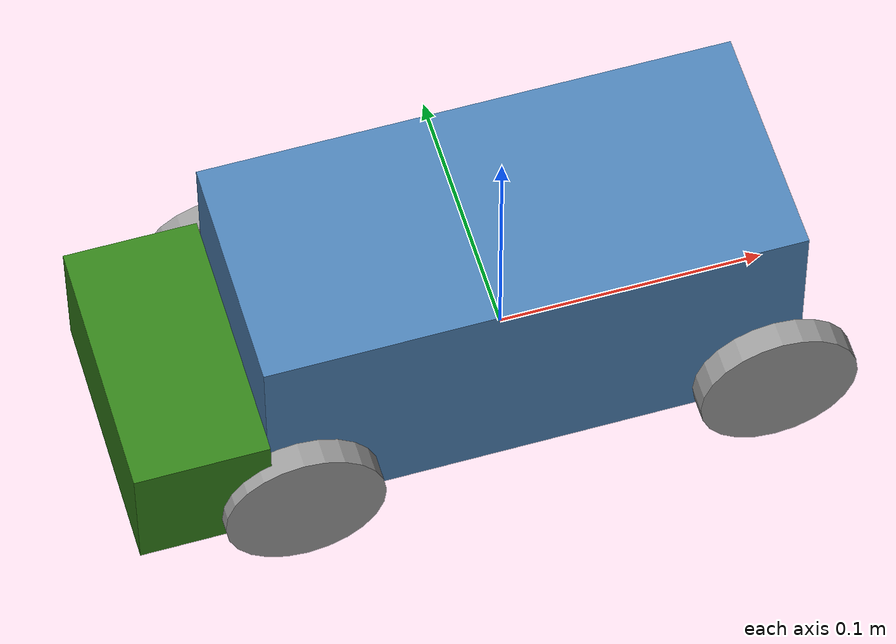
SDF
<?xml version='1.0'?>
<sdf version='1.6'>
  <model name='toycar'>
    <link name='link_1'>
      <inertial>
        <mass>1</mass>
        <inertia>
          <ixx>0.166667</ixx>
          <ixy>0</ixy>
          <ixz>0</ixz>
          <iyy>0.166667</iyy>
          <iyz>0</iyz>
          <izz>0.166667</izz>
        </inertia>
        <pose frame=''>0 0 0 0 -0 0</pose>
      </inertial>
      <pose frame=''>0 0 0.03 0 -0 0</pose>
      <gravity>1</gravity>
      <self_collide>0</self_collide>
      <kinematic>0</kinematic>
      <enable_wind>0</enable_wind>
      <visual name='visual'>
        <pose frame=''>0 0 0 0 -0 0</pose>
        <geometry>
          <box>
            <size>0.2 0.09 0.09</size>
          </box>
        </geometry>
        <material>
          <lighting>1</lighting>
          <script>
            <uri>file://media/materials/scripts/gazebo.material</uri>
            <name>Gazebo/Grey</name>
          </script>
          <shader type='pixel'>
            <normal_map>__default__</normal_map>
          </shader>
          <ambient>0.2 0.5 0.1 1</ambient>
          <diffuse>0.3 0.5 0.7 1</diffuse>
          <specular>0.1 0.2 0.2 1</specular>
          <emissive>0.2 0.2 0.2 1</emissive>
        </material>
        <transparency>0</transparency>
        <cast_shadows>1</cast_shadows>
      </visual>
      <collision name='collision'>
        <laser_retro>0</laser_retro>
        <max_contacts>10</max_contacts>
        <pose frame=''>0 0 0 0 -0 0</pose>
        <geometry>
          <box>
            <size>0.2 0.09 0.09</size>
          </box>
        </geometry>
        <surface>
          <friction>
            <ode>
              <mu>1</mu>
              <mu2>1</mu2>
              <fdir1>0 0 0</fdir1>
              <slip1>0</slip1>
              <slip2>0</slip2>
            </ode>
            <torsional>
              <coefficient>1</coefficient>
              <patch_radius>0</patch_radius>
              <surface_radius>0</surface_radius>
              <use_patch_radius>1</use_patch_radius>
              <ode>
                <slip>0</slip>
              </ode>
            </torsional>
          </friction>
          <bounce>
            <restitution_coefficient>0</restitution_coefficient>
            <threshold>1e+06</threshold>
          </bounce>
          <contact>
            <collide_without_contact>0</collide_without_contact>
            <collide_without_contact_bitmask>1</collide_without_contact_bitmask>
            <collide_bitmask>1</collide_bitmask>
            <ode>
              <soft_cfm>0</soft_cfm>
              <soft_erp>0.2</soft_erp>
              <kp>1e+13</kp>
              <kd>1</kd>
              <max_vel>0.01</max_vel>
              <min_depth>0</min_depth>
            </ode>
            <bullet>
              <split_impulse>1</split_impulse>
              <split_impulse_penetration_threshold>-0.01</split_impulse_penetration_threshold>
              <soft_cfm>0</soft_cfm>
              <soft_erp>0.2</soft_erp>
              <kp>1e+13</kp>
              <kd>1</kd>
            </bullet>
          </contact>
        </surface>
      </collision>
    </link>
    <link name='link_2'>
      <inertial>
        <mass>1</mass>
        <inertia>
          <ixx>0.166667</ixx>
          <ixy>0</ixy>
          <ixz>0</ixz>
          <iyy>0.166667</iyy>
          <iyz>0</iyz>
          <izz>0.166667</izz>
        </inertia>
        <pose frame=''>0 0 0 0 -0 0</pose>
      </inertial>
      <pose frame=''>-0.125003 -4e-06 0.01 0 -0 0</pose>
      <gravity>1</gravity>
      <self_collide>0</self_collide>
      <kinematic>0</kinematic>
      <enable_wind>0</enable_wind>
      <visual name='visual'>
        <pose frame=''>0 0 0 0 -0 0</pose>
        <geometry>
          <box>
            <size>0.05 0.1 0.05</size>
          </box>
        </geometry>
        <material>
          <lighting>1</lighting>
          <script>
            <uri>file://media/materials/scripts/gazebo.material</uri>
            <name>Gazebo/Grey</name>
          </script>
          <shader type='pixel'>
            <normal_map>__default__</normal_map>
          </shader>
          <ambient>0.2 0.5 0.1 1</ambient>
          <diffuse>0.7 0.7 0.7 1</diffuse>
          <specular>0.01 0.01 0.01 1</specular>
          <emissive>0 0 0 1</emissive>
        </material>
        <transparency>0</transparency>
        <cast_shadows>1</cast_shadows>
      </visual>
      <collision name='collision'>
        <laser_retro>0</laser_retro>
        <max_contacts>10</max_contacts>
        <pose frame=''>0 0 0 0 -0 0</pose>
        <geometry>
          <box>
            <size>0.05 0.1 0.05</size>
          </box>
        </geometry>
        <surface>
          <friction>
            <ode>
              <mu>1</mu>
              <mu2>1</mu2>
              <fdir1>0 0 0</fdir1>
              <slip1>0</slip1>
              <slip2>0</slip2>
            </ode>
            <torsional>
              <coefficient>1</coefficient>
              <patch_radius>0</patch_radius>
              <surface_radius>0</surface_radius>
              <use_patch_radius>1</use_patch_radius>
              <ode>
                <slip>0</slip>
              </ode>
            </torsional>
          </friction>
          <bounce>
            <restitution_coefficient>0</restitution_coefficient>
            <threshold>1e+06</threshold>
          </bounce>
          <contact>
            <collide_without_contact>0</collide_without_contact>
            <collide_without_contact_bitmask>1</collide_without_contact_bitmask>
            <collide_bitmask>1</collide_bitmask>
            <ode>
              <soft_cfm>0</soft_cfm>
              <soft_erp>0.2</soft_erp>
              <kp>1e+13</kp>
              <kd>1</kd>
              <max_vel>0.01</max_vel>
              <min_depth>0</min_depth>
            </ode>
            <bullet>
              <split_impulse>1</split_impulse>
              <split_impulse_penetration_threshold>-0.01</split_impulse_penetration_threshold>
              <soft_cfm>0</soft_cfm>
              <soft_erp>0.2</soft_erp>
              <kp>1e+13</kp>
              <kd>1</kd>
            </bullet>
          </contact>
        </surface>
      </collision>
    </link>
    <link name='link_3_clone'>
      <inertial>
        <mass>1</mass>
        <inertia>
          <ixx>0.145833</ixx>
          <ixy>0</ixy>
          <ixz>0</ixz>
          <iyy>0.145833</iyy>
          <iyz>0</iyz>
          <izz>0.125</izz>
        </inertia>
        <pose frame=''>0 0 0 0 -0 0</pose>
      </inertial>
      <pose frame=''>-0.089208 0.059002 -0.004202 1.5707 -0 0</pose>
      <gravity>1</gravity>
      <self_collide>0</self_collide>
      <kinematic>0</kinematic>
      <enable_wind>0</enable_wind>
      <visual name='visual'>
        <pose frame=''>0 0 0 0 -0 0</pose>
        <geometry>
          <cylinder>
            <radius>0.03</radius>
            <length>0.01</length>
          </cylinder>
        </geometry>
        <material>
          <lighting>1</lighting>
          <script>
            <uri>file://media/materials/scripts/gazebo.material</uri>
            <name>Gazebo/Grey</name>
          </script>
          <shader type='pixel'>
            <normal_map>__default__</normal_map>
          </shader>
          <ambient>0 0 0 1</ambient>
          <diffuse>0 0 0 1</diffuse>
          <specular>0.01 0.01 0.01 1</specular>
          <emissive>0 0 0 1</emissive>
        </material>
        <transparency>0</transparency>
        <cast_shadows>1</cast_shadows>
      </visual>
      <collision name='collision'>
        <laser_retro>0</laser_retro>
        <max_contacts>10</max_contacts>
        <pose frame=''>0 0 0 0 -0 0</pose>
        <geometry>
          <cylinder>
            <radius>0.03</radius>
            <length>0.01</length>
          </cylinder>
        </geometry>
        <surface>
          <friction>
            <ode>
              <mu>1</mu>
              <mu2>1</mu2>
              <fdir1>0 0 0</fdir1>
              <slip1>0</slip1>
              <slip2>0</slip2>
            </ode>
            <torsional>
              <coefficient>1</coefficient>
              <patch_radius>0</patch_radius>
              <surface_radius>0</surface_radius>
              <use_patch_radius>1</use_patch_radius>
              <ode>
                <slip>0</slip>
              </ode>
            </torsional>
          </friction>
          <bounce>
            <restitution_coefficient>0</restitution_coefficient>
            <threshold>1e+06</threshold>
          </bounce>
          <contact>
            <collide_without_contact>0</collide_without_contact>
            <collide_without_contact_bitmask>1</collide_without_contact_bitmask>
            <collide_bitmask>1</collide_bitmask>
            <ode>
              <soft_cfm>0</soft_cfm>
              <soft_erp>0.2</soft_erp>
              <kp>1e+13</kp>
              <kd>1</kd>
              <max_vel>0.01</max_vel>
              <min_depth>0</min_depth>
            </ode>
            <bullet>
              <split_impulse>1</split_impulse>
              <split_impulse_penetration_threshold>-0.01</split_impulse_penetration_threshold>
              <soft_cfm>0</soft_cfm>
              <soft_erp>0.2</soft_erp>
              <kp>1e+13</kp>
              <kd>1</kd>
            </bullet>
          </contact>
        </surface>
      </collision>
    </link>
    <link name='link_3_clone_0'>
      <inertial>
        <mass>1</mass>
        <inertia>
          <ixx>0.145833</ixx>
          <ixy>0</ixy>
          <ixz>0</ixz>
          <iyy>0.145833</iyy>
          <iyz>0</iyz>
          <izz>0.125</izz>
        </inertia>
        <pose frame=''>0 0 0 0 -0 0</pose>
      </inertial>
      <pose frame=''>0.089381 0.059008 -0.004379 1.5707 -0 0</pose>
      <gravity>1</gravity>
      <self_collide>0</self_collide>
      <kinematic>0</kinematic>
      <enable_wind>0</enable_wind>
      <visual name='visual'>
        <pose frame=''>0 0 0 0 -0 0</pose>
        <geometry>
          <cylinder>
            <radius>0.03</radius>
            <length>0.01</length>
          </cylinder>
        </geometry>
        <material>
          <lighting>1</lighting>
          <script>
            <uri>file://media/materials/scripts/gazebo.material</uri>
            <name>Gazebo/Grey</name>
          </script>
          <shader type='pixel'>
            <normal_map>__default__</normal_map>
          </shader>
          <ambient>0 0 0 1</ambient>
          <diffuse>0 0 0 1</diffuse>
          <specular>0.01 0.01 0.01 1</specular>
          <emissive>0 0 0 1</emissive>
        </material>
        <transparency>0</transparency>
        <cast_shadows>1</cast_shadows>
      </visual>
      <collision name='collision'>
        <laser_retro>0</laser_retro>
        <max_contacts>10</max_contacts>
        <pose frame=''>0 0 0 0 -0 0</pose>
        <geometry>
          <cylinder>
            <radius>0.03</radius>
            <length>0.01</length>
          </cylinder>
        </geometry>
        <surface>
          <friction>
            <ode>
              <mu>1</mu>
              <mu2>1</mu2>
              <fdir1>0 0 0</fdir1>
              <slip1>0</slip1>
              <slip2>0</slip2>
            </ode>
            <torsional>
              <coefficient>1</coefficient>
              <patch_radius>0</patch_radius>
              <surface_radius>0</surface_radius>
              <use_patch_radius>1</use_patch_radius>
              <ode>
                <slip>0</slip>
              </ode>
            </torsional>
          </friction>
          <bounce>
            <restitution_coefficient>0</restitution_coefficient>
            <threshold>1e+06</threshold>
          </bounce>
          <contact>
            <collide_without_contact>0</collide_without_contact>
            <collide_without_contact_bitmask>1</collide_without_contact_bitmask>
            <collide_bitmask>1</collide_bitmask>
            <ode>
              <soft_cfm>0</soft_cfm>
              <soft_erp>0.2</soft_erp>
              <kp>1e+13</kp>
              <kd>1</kd>
              <max_vel>0.01</max_vel>
              <min_depth>0</min_depth>
            </ode>
            <bullet>
              <split_impulse>1</split_impulse>
              <split_impulse_penetration_threshold>-0.01</split_impulse_penetration_threshold>
              <soft_cfm>0</soft_cfm>
              <soft_erp>0.2</soft_erp>
              <kp>1e+13</kp>
              <kd>1</kd>
            </bullet>
          </contact>
        </surface>
      </collision>
    </link>
    <link name='link_3_clone_2'>
      <inertial>
        <mass>1</mass>
        <inertia>
          <ixx>0.145833</ixx>
          <ixy>0</ixy>
          <ixz>0</ixz>
          <iyy>0.145833</iyy>
          <iyz>0</iyz>
          <izz>0.125</izz>
        </inertia>
        <pose frame=''>0 0 0 0 -0 0</pose>
      </inertial>
      <pose frame=''>-0.089205 -0.050008 -0.004202 1.5707 -0 0</pose>
      <gravity>1</gravity>
      <self_collide>0</self_collide>
      <kinematic>0</kinematic>
      <enable_wind>0</enable_wind>
      <visual name='visual'>
        <pose frame=''>0 0 0 0 -0 0</pose>
        <geometry>
          <cylinder>
            <radius>0.03</radius>
            <length>0.01</length>
          </cylinder>
        </geometry>
        <material>
          <lighting>1</lighting>
          <script>
            <uri>file://media/materials/scripts/gazebo.material</uri>
            <name>Gazebo/Grey</name>
          </script>
          <shader type='pixel'>
            <normal_map>__default__</normal_map>
          </shader>
          <ambient>0 0 0 1</ambient>
          <diffuse>0 0 0 1</diffuse>
          <specular>0.01 0.01 0.01 1</specular>
          <emissive>0 0 0 1</emissive>
        </material>
        <transparency>0</transparency>
        <cast_shadows>1</cast_shadows>
      </visual>
      <collision name='collision'>
        <laser_retro>0</laser_retro>
        <max_contacts>10</max_contacts>
        <pose frame=''>0 0 0 0 -0 0</pose>
        <geometry>
          <cylinder>
            <radius>0.03</radius>
            <length>0.01</length>
          </cylinder>
        </geometry>
        <surface>
          <friction>
            <ode>
              <mu>1</mu>
              <mu2>1</mu2>
              <fdir1>0 0 0</fdir1>
              <slip1>0</slip1>
              <slip2>0</slip2>
            </ode>
            <torsional>
              <coefficient>1</coefficient>
              <patch_radius>0</patch_radius>
              <surface_radius>0</surface_radius>
              <use_patch_radius>1</use_patch_radius>
              <ode>
                <slip>0</slip>
              </ode>
            </torsional>
          </friction>
          <bounce>
            <restitution_coefficient>0</restitution_coefficient>
            <threshold>1e+06</threshold>
          </bounce>
          <contact>
            <collide_without_contact>0</collide_without_contact>
            <collide_without_contact_bitmask>1</collide_without_contact_bitmask>
            <collide_bitmask>1</collide_bitmask>
            <ode>
              <soft_cfm>0</soft_cfm>
              <soft_erp>0.2</soft_erp>
              <kp>1e+13</kp>
              <kd>1</kd>
              <max_vel>0.01</max_vel>
              <min_depth>0</min_depth>
            </ode>
            <bullet>
              <split_impulse>1</split_impulse>
              <split_impulse_penetration_threshold>-0.01</split_impulse_penetration_threshold>
              <soft_cfm>0</soft_cfm>
              <soft_erp>0.2</soft_erp>
              <kp>1e+13</kp>
              <kd>1</kd>
            </bullet>
          </contact>
        </surface>
      </collision>
    </link>
    <link name='link_3_clone_4'>
      <inertial>
        <mass>1</mass>
        <inertia>
          <ixx>0.145833</ixx>
          <ixy>0</ixy>
          <ixz>0</ixz>
          <iyy>0.145833</iyy>
          <iyz>0</iyz>
          <izz>0.125</izz>
        </inertia>
        <pose frame=''>0 0 0 0 -0 0</pose>
      </inertial>
      <pose frame=''>0.089384 -0.050002 -0.004379 1.5707 -0 0</pose>
      <gravity>1</gravity>
      <self_collide>0</self_collide>
      <kinematic>0</kinematic>
      <enable_wind>0</enable_wind>
      <visual name='visual'>
        <pose frame=''>0 0 0 0 -0 0</pose>
        <geometry>
          <cylinder>
            <radius>0.03</radius>
            <length>0.01</length>
          </cylinder>
        </geometry>
        <material>
          <lighting>1</lighting>
          <script>
            <uri>file://media/materials/scripts/gazebo.material</uri>
            <name>Gazebo/Grey</name>
          </script>
          <shader type='pixel'>
            <normal_map>__default__</normal_map>
          </shader>
          <ambient>0 0 0 1</ambient>
          <diffuse>0 0 0 1</diffuse>
          <specular>0.01 0.01 0.01 1</specular>
          <emissive>0 0 0 1</emissive>
        </material>
        <transparency>0</transparency>
        <cast_shadows>1</cast_shadows>
      </visual>
      <collision name='collision'>
        <laser_retro>0</laser_retro>
        <max_contacts>10</max_contacts>
        <pose frame=''>0 0 0 0 -0 0</pose>
        <geometry>
          <cylinder>
            <radius>0.03</radius>
            <length>0.01</length>
          </cylinder>
        </geometry>
        <surface>
          <friction>
            <ode>
              <mu>1</mu>
              <mu2>1</mu2>
              <fdir1>0 0 0</fdir1>
              <slip1>0</slip1>
              <slip2>0</slip2>
            </ode>
            <torsional>
              <coefficient>1</coefficient>
              <patch_radius>0</patch_radius>
              <surface_radius>0</surface_radius>
              <use_patch_radius>1</use_patch_radius>
              <ode>
                <slip>0</slip>
              </ode>
            </torsional>
          </friction>
          <bounce>
            <restitution_coefficient>0</restitution_coefficient>
            <threshold>1e+06</threshold>
          </bounce>
          <contact>
            <collide_without_contact>0</collide_without_contact>
            <collide_without_contact_bitmask>1</collide_without_contact_bitmask>
            <collide_bitmask>1</collide_bitmask>
            <ode>
              <soft_cfm>0</soft_cfm>
              <soft_erp>0.2</soft_erp>
              <kp>1e+13</kp>
              <kd>1</kd>
              <max_vel>0.01</max_vel>
              <min_depth>0</min_depth>
            </ode>
            <bullet>
              <split_impulse>1</split_impulse>
              <split_impulse_penetration_threshold>-0.01</split_impulse_penetration_threshold>
              <soft_cfm>0</soft_cfm>
              <soft_erp>0.2</soft_erp>
              <kp>1e+13</kp>
              <kd>1</kd>
            </bullet>
          </contact>
        </surface>
      </collision>
    </link>
    <link name='link_4'>
      <inertial>
        <mass>7.615e-05</mass>
        <inertia>
          <ixx>8.2e-07</ixx>
          <ixy>0</ixy>
          <ixz>0</ixz>
          <iyy>8.2e-07</iyy>
          <iyz>0</iyz>
          <izz>0</izz>
        </inertia>
        <pose frame=''>0 0 0 0 -0 0</pose>
      </inertial>
      <pose frame=''>0.086 2e-06 -0.007761 1.5707 -0 0</pose>
      <gravity>1</gravity>
      <self_collide>0</self_collide>
      <kinematic>0</kinematic>
      <enable_wind>0</enable_wind>
      <visual name='visual'>
        <pose frame=''>0 0 0 0 -0 0</pose>
        <geometry>
          <cylinder>
            <radius>0.007235</radius>
            <length>0.09</length>
          </cylinder>
        </geometry>
        <material>
          <lighting>1</lighting>
          <script>
            <uri>file://media/materials/scripts/gazebo.material</uri>
            <name>Gazebo/Grey</name>
          </script>
          <shader type='pixel'>
            <normal_map>__default__</normal_map>
          </shader>
          <ambient>0.3 0.3 0.3 1</ambient>
          <diffuse>0.7 0.7 0.7 1</diffuse>
          <specular>0.01 0.01 0.01 1</specular>
          <emissive>0 0 0 1</emissive>
        </material>
        <transparency>0</transparency>
        <cast_shadows>1</cast_shadows>
      </visual>
      <collision name='collision'>
        <laser_retro>0</laser_retro>
        <max_contacts>10</max_contacts>
        <pose frame=''>0 0 0 0 -0 0</pose>
        <geometry>
          <cylinder>
            <radius>0.007235</radius>
            <length>0.09</length>
          </cylinder>
        </geometry>
        <surface>
          <friction>
            <ode>
              <mu>1</mu>
              <mu2>1</mu2>
              <fdir1>0 0 0</fdir1>
              <slip1>0</slip1>
              <slip2>0</slip2>
            </ode>
            <torsional>
              <coefficient>1</coefficient>
              <patch_radius>0</patch_radius>
              <surface_radius>0</surface_radius>
              <use_patch_radius>1</use_patch_radius>
              <ode>
                <slip>0</slip>
              </ode>
            </torsional>
          </friction>
          <bounce>
            <restitution_coefficient>0</restitution_coefficient>
            <threshold>1e+06</threshold>
          </bounce>
          <contact>
            <collide_without_contact>0</collide_without_contact>
            <collide_without_contact_bitmask>1</collide_without_contact_bitmask>
            <collide_bitmask>1</collide_bitmask>
            <ode>
              <soft_cfm>0</soft_cfm>
              <soft_erp>0.2</soft_erp>
              <kp>1e+13</kp>
              <kd>1</kd>
              <max_vel>0.01</max_vel>
              <min_depth>0</min_depth>
            </ode>
            <bullet>
              <split_impulse>1</split_impulse>
              <split_impulse_penetration_threshold>-0.01</split_impulse_penetration_threshold>
              <soft_cfm>0</soft_cfm>
              <soft_erp>0.2</soft_erp>
              <kp>1e+13</kp>
              <kd>1</kd>
            </bullet>
          </contact>
        </surface>
      </collision>
    </link>
    <link name='link_4_clone_0'>
      <inertial>
        <mass>7.615e-05</mass>
        <inertia>
          <ixx>8.2e-07</ixx>
          <ixy>0</ixy>
          <ixz>0</ixz>
          <iyy>8.2e-07</iyy>
          <iyz>0</iyz>
          <izz>0</izz>
        </inertia>
        <pose frame=''>0 0 0 0 -0 0</pose>
      </inertial>
      <pose frame=''>-0.092412 -3e-06 -0.007408 1.5707 -0 0</pose>
      <gravity>1</gravity>
      <self_collide>0</self_collide>
      <kinematic>0</kinematic>
      <enable_wind>0</enable_wind>
      <visual name='visual'>
        <pose frame=''>0 0 0 0 -0 0</pose>
        <geometry>
          <cylinder>
            <radius>0.007235</radius>
            <length>0.09</length>
          </cylinder>
        </geometry>
        <material>
          <lighting>1</lighting>
          <script>
            <uri>file://media/materials/scripts/gazebo.material</uri>
            <name>Gazebo/Grey</name>
          </script>
          <shader type='pixel'>
            <normal_map>__default__</normal_map>
          </shader>
          <ambient>0.3 0.3 0.3 1</ambient>
          <diffuse>0.7 0.7 0.7 1</diffuse>
          <specular>0.01 0.01 0.01 1</specular>
          <emissive>0 0 0 1</emissive>
        </material>
        <transparency>0</transparency>
        <cast_shadows>1</cast_shadows>
      </visual>
      <collision name='collision'>
        <laser_retro>0</laser_retro>
        <max_contacts>10</max_contacts>
        <pose frame=''>0 0 0 0 0 -0.05</pose>
        <geometry>
          <cylinder>
            <radius>0.007235</radius>
            <length>0.09</length>
          </cylinder>
        </geometry>
        <surface>
          <friction>
            <ode>
              <mu>1</mu>
              <mu2>1</mu2>
              <fdir1>0 0 0</fdir1>
              <slip1>0</slip1>
              <slip2>0</slip2>
            </ode>
            <torsional>
              <coefficient>1</coefficient>
              <patch_radius>0</patch_radius>
              <surface_radius>0</surface_radius>
              <use_patch_radius>1</use_patch_radius>
              <ode>
                <slip>0</slip>
              </ode>
            </torsional>
          </friction>
          <bounce>
            <restitution_coefficient>0</restitution_coefficient>
            <threshold>1e+06</threshold>
          </bounce>
          <contact>
            <collide_without_contact>0</collide_without_contact>
            <collide_without_contact_bitmask>1</collide_without_contact_bitmask>
            <collide_bitmask>1</collide_bitmask>
            <ode>
              <soft_cfm>0</soft_cfm>
              <soft_erp>0.2</soft_erp>
              <kp>1e+13</kp>
              <kd>1</kd>
              <max_vel>0.01</max_vel>
              <min_depth>0</min_depth>
            </ode>
            <bullet>
              <split_impulse>1</split_impulse>
              <split_impulse_penetration_threshold>-0.01</split_impulse_penetration_threshold>
              <soft_cfm>0</soft_cfm>
              <soft_erp>0.2</soft_erp>
              <kp>1e+13</kp>
              <kd>1</kd>
            </bullet>
          </contact>
        </surface>
      </collision>
    </link>
    <joint name='link_1_JOINT_0' type='revolute'>
      <parent>link_1</parent>
      <child>link_4</child>
      <pose frame=''>0 0 0 0 -0 0</pose>
      <axis>
        <xyz>0 0 1</xyz>
        <use_parent_model_frame>0</use_parent_model_frame>
        <limit>
          <lower>-1.79769e+308</lower>
          <upper>1.79769e+308</upper>
          <effort>-1</effort>
          <velocity>-1</velocity>
        </limit>
        <dynamics>
          <spring_reference>0</spring_reference>
          <spring_stiffness>0</spring_stiffness>
          <damping>0</damping>
          <friction>0</friction>
        </dynamics>
      </axis>
      <physics>
        <ode>
          <limit>
            <cfm>0</cfm>
            <erp>0.2</erp>
          </limit>
          <suspension>
            <cfm>0</cfm>
            <erp>0.2</erp>
          </suspension>
        </ode>
      </physics>
    </joint>
    <joint name='link_1_JOINT_3' type='revolute'>
      <parent>link_1</parent>
      <child>link_4_clone_0</child>
      <pose frame=''>0 0 0 0 -0 0</pose>
      <axis>
        <xyz>1 0 0</xyz>
        <use_parent_model_frame>0</use_parent_model_frame>
        <limit>
          <lower>-1.79769e+308</lower>
          <upper>1.79769e+308</upper>
          <effort>-1</effort>
          <velocity>-1</velocity>
        </limit>
        <dynamics>
          <spring_reference>0</spring_reference>
          <spring_stiffness>0</spring_stiffness>
          <damping>0</damping>
          <friction>0</friction>
        </dynamics>
      </axis>
      <physics>
        <ode>
          <limit>
            <cfm>0</cfm>
            <erp>0.2</erp>
          </limit>
          <suspension>
            <cfm>0</cfm>
            <erp>0.2</erp>
          </suspension>
        </ode>
      </physics>
    </joint>
    <joint name='link_1_JOINT_6' type='fixed'>
      <parent>link_1</parent>
      <child>link_2</child>
      <pose frame=''>0 0 0 0 -0 0</pose>
      <physics>
        <ode>
          <limit>
            <cfm>0</cfm>
            <erp>0.2</erp>
          </limit>
          <suspension>
            <cfm>0</cfm>
            <erp>0.2</erp>
          </suspension>
        </ode>
      </physics>
    </joint>
    <joint name='link_4_JOINT_1' type='revolute'>
      <parent>link_4</parent>
      <child>link_3_clone_4</child>
      <pose frame=''>0 0 0 0 -0 0</pose>
      <axis>
        <xyz>1 0 0</xyz>
        <use_parent_model_frame>0</use_parent_model_frame>
        <limit>
          <lower>-1.79769e+308</lower>
          <upper>1.79769e+308</upper>
          <effort>-1</effort>
          <velocity>-1</velocity>
        </limit>
        <dynamics>
          <spring_reference>0</spring_reference>
          <spring_stiffness>0</spring_stiffness>
          <damping>0</damping>
          <friction>0</friction>
        </dynamics>
      </axis>
      <physics>
        <ode>
          <limit>
            <cfm>0</cfm>
            <erp>0.2</erp>
          </limit>
          <suspension>
            <cfm>0</cfm>
            <erp>0.2</erp>
          </suspension>
        </ode>
      </physics>
    </joint>
    <joint name='link_4_JOINT_2' type='revolute'>
      <parent>link_4</parent>
      <child>link_3_clone_0</child>
      <pose frame=''>0 0 0 0 -0 0</pose>
      <axis>
        <xyz>1 0 0</xyz>
        <use_parent_model_frame>0</use_parent_model_frame>
        <limit>
          <lower>-1.79769e+308</lower>
          <upper>1.79769e+308</upper>
          <effort>-1</effort>
          <velocity>-1</velocity>
        </limit>
        <dynamics>
          <spring_reference>0</spring_reference>
          <spring_stiffness>0</spring_stiffness>
          <damping>0</damping>
          <friction>0</friction>
        </dynamics>
      </axis>
      <physics>
        <ode>
          <limit>
            <cfm>0</cfm>
            <erp>0.2</erp>
          </limit>
          <suspension>
            <cfm>0</cfm>
            <erp>0.2</erp>
          </suspension>
        </ode>
      </physics>
    </joint>
    <joint name='link_4_clone_0_JOINT_4' type='revolute'>
      <parent>link_4_clone_0</parent>
      <child>link_3_clone_2</child>
      <pose frame=''>0 0 0 0 -0 0</pose>
      <axis>
        <xyz>1 0 0</xyz>
        <use_parent_model_frame>0</use_parent_model_frame>
        <limit>
          <lower>-1.79769e+308</lower>
          <upper>1.79769e+308</upper>
          <effort>-1</effort>
          <velocity>-1</velocity>
        </limit>
        <dynamics>
          <spring_reference>0</spring_reference>
          <spring_stiffness>0</spring_stiffness>
          <damping>0</damping>
          <friction>0</friction>
        </dynamics>
      </axis>
      <physics>
        <ode>
          <limit>
            <cfm>0</cfm>
            <erp>0.2</erp>
          </limit>
          <suspension>
            <cfm>0</cfm>
            <erp>0.2</erp>
          </suspension>
        </ode>
      </physics>
    </joint>
    <joint name='link_4_clone_0_JOINT_5' type='revolute'>
      <parent>link_4_clone_0</parent>
      <child>link_3_clone</child>
      <pose frame=''>0 0 0 0 -0 0</pose>
      <axis>
        <xyz>1 0 0</xyz>
        <use_parent_model_frame>0</use_parent_model_frame>
        <limit>
          <lower>-1.79769e+308</lower>
          <upper>1.79769e+308</upper>
          <effort>-1</effort>
          <velocity>-1</velocity>
        </limit>
        <dynamics>
          <spring_reference>0</spring_reference>
          <spring_stiffness>0</spring_stiffness>
          <damping>0</damping>
          <friction>0</friction>
        </dynamics>
      </axis>
      <physics>
        <ode>
          <limit>
            <cfm>0</cfm>
            <erp>0.2</erp>
          </limit>
          <suspension>
            <cfm>0</cfm>
            <erp>0.2</erp>
          </suspension>
        </ode>
      </physics>
    </joint>
    <static>1</static>
    <allow_auto_disable>1</allow_auto_disable>
  </model>
</sdf>
